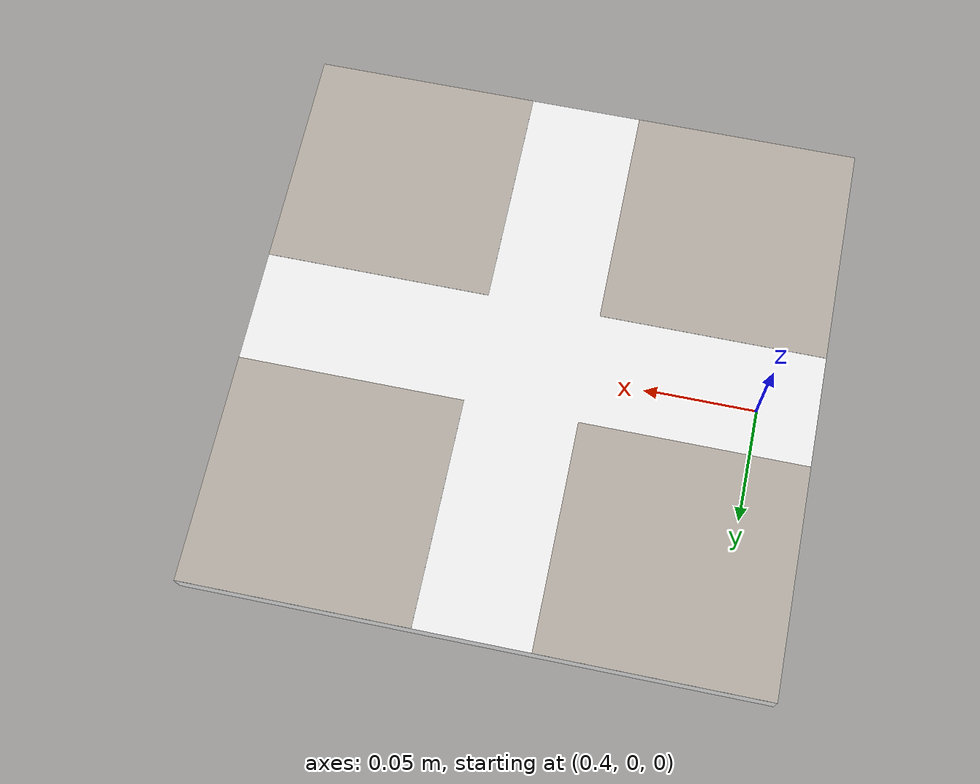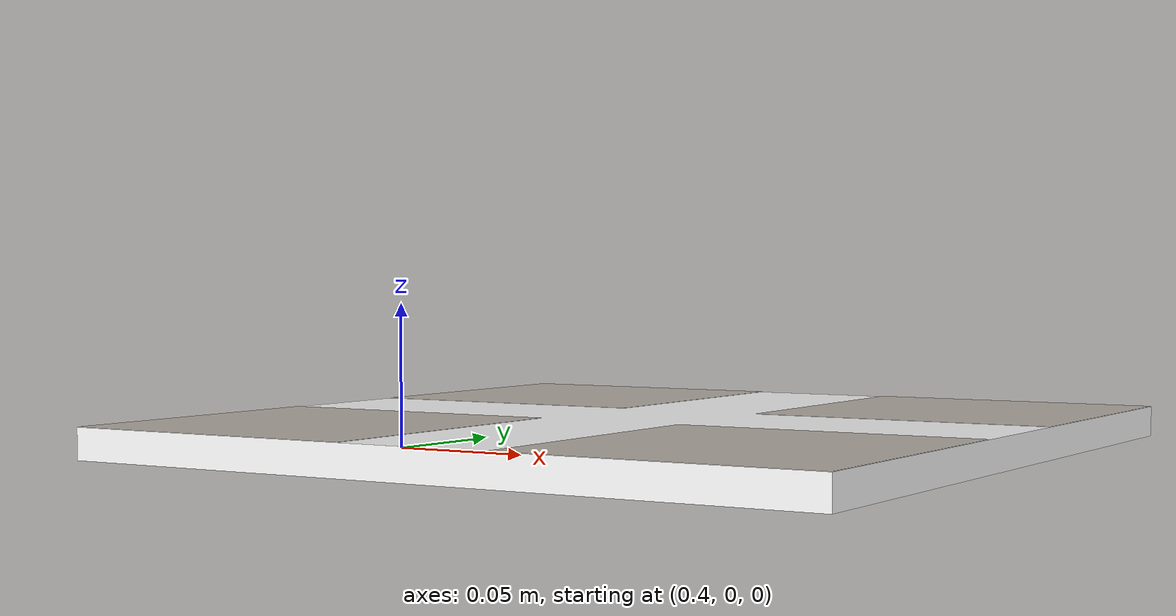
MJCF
<mujoco model="ibvs apriltag target">
  <asset>
    <texture type="2d" name="apriltag_0_tex" file="../misc/textures/tag36h11_0.png"/>
    <texture type="2d" name="apriltag_1_tex" file="../misc/textures/tag36h11_1.png"/>
    <texture type="2d" name="apriltag_2_tex" file="../misc/textures/tag36h11_2.png"/>
    <texture type="2d" name="apriltag_3_tex" file="../misc/textures/tag36h11_3.png"/>

    <material name="tag_board_white" rgba="1 1 1 1" specular="0.1" shininess="0.1"/>
    <material name="apriltag_0_mat" texture="apriltag_0_tex" texuniform="true" specular="0" shininess="0"/>
    <material name="apriltag_1_mat" texture="apriltag_1_tex" texuniform="true" specular="0" shininess="0"/>
    <material name="apriltag_2_mat" texture="apriltag_2_tex" texuniform="true" specular="0" shininess="0"/>
    <material name="apriltag_3_mat" texture="apriltag_3_tex" texuniform="true" specular="0" shininess="0"/>

    <mesh name="apriltag_square_100"
      vertex="-0.05 -0.05 -0.00005  0.05 -0.05 -0.00005  0.05 0.05 -0.00005  -0.05 0.05 -0.00005
              -0.05 -0.05 0.00005  0.05 -0.05 0.00005  0.05 0.05 0.00005  -0.05 0.05 0.00005"
      texcoord="0 0  1 0  1 1  0 1  1 0  0 0  0 1  1 1"
      face="0 2 1  0 3 2  4 5 6  4 6 7  0 1 5  0 5 4
            1 2 6  1 6 5  2 3 7  2 7 6  3 0 4  3 4 7"/>
  </asset>

  <worldbody>
    <body name="tag_target" pos="0.5 0 0.01" quat="1 0 0 0" gravcomp="1">
      <joint name="tag_slide_x" type="slide" axis="1 0 0" range="-0.5 0.5" damping="20"/>
      <joint name="tag_slide_y" type="slide" axis="0 1 0" range="-0.5 0.5" damping="20"/>
      <joint name="tag_slide_z" type="slide" axis="0 0 1" range="-0.2 0.5" damping="20"/>
      <joint name="tag_hinge_x" type="hinge" axis="1 0 0" range="-3.14159 3.14159" damping="5"/>
      <joint name="tag_hinge_y" type="hinge" axis="0 1 0" range="-3.14159 3.14159" damping="5"/>
      <joint name="tag_hinge_z" type="hinge" axis="0 0 1" range="-3.14159 3.14159" damping="5"/>

      <geom name="tag_board" type="box" size="0.125 0.125 0.005" material="tag_board_white"
        contype="0" conaffinity="0"/>

      <geom name="apriltag_0" type="mesh" mesh="apriltag_square_100" pos="-0.075 0.075 0.0051"
        material="apriltag_0_mat" contype="0" conaffinity="0"/>
      <geom name="apriltag_1" type="mesh" mesh="apriltag_square_100" pos="0.075 0.075 0.0051"
        material="apriltag_1_mat" contype="0" conaffinity="0"/>
      <geom name="apriltag_2" type="mesh" mesh="apriltag_square_100" pos="0.075 -0.075 0.0051"
        material="apriltag_2_mat" contype="0" conaffinity="0"/>
      <geom name="apriltag_3" type="mesh" mesh="apriltag_square_100" pos="-0.075 -0.075 0.0051"
        material="apriltag_3_mat" contype="0" conaffinity="0"/>
    </body>
  </worldbody>

  <actuator>
    <position name="tag_x_pos" joint="tag_slide_x" kp="200" ctrlrange="-0.5 0.5"/>
    <position name="tag_y_pos" joint="tag_slide_y" kp="200" ctrlrange="-0.5 0.5"/>
    <position name="tag_z_pos" joint="tag_slide_z" kp="200" ctrlrange="-0.2 0.5"/>
    <position name="tag_roll_pos" joint="tag_hinge_x" kp="50" ctrlrange="-3.14159 3.14159"/>
    <position name="tag_pitch_pos" joint="tag_hinge_y" kp="50" ctrlrange="-3.14159 3.14159"/>
    <position name="tag_yaw_pos" joint="tag_hinge_z" kp="50" ctrlrange="-3.14159 3.14159"/>
  </actuator>
</mujoco>
